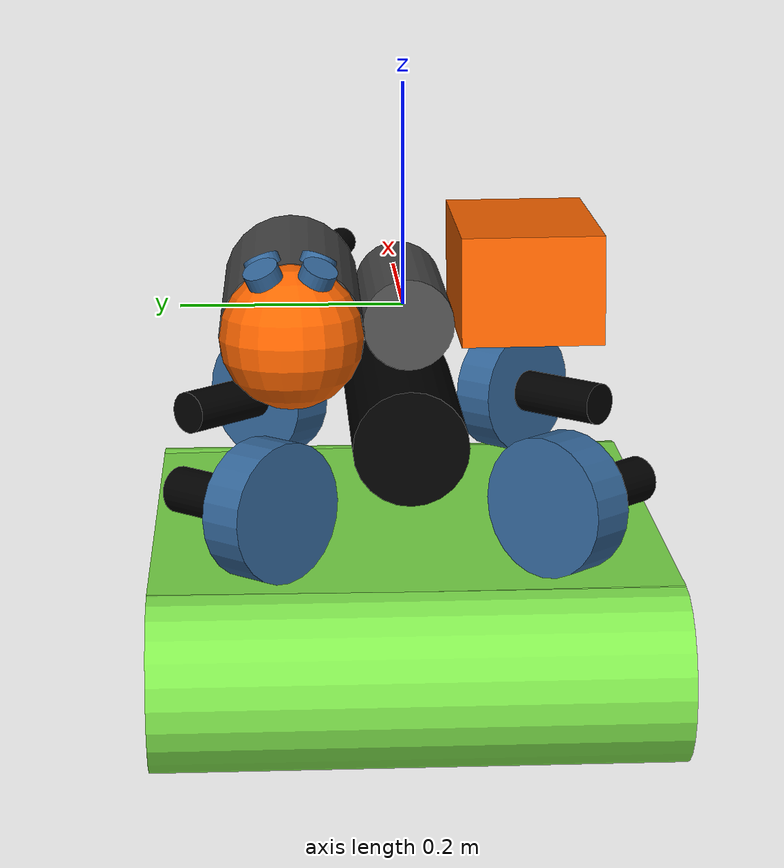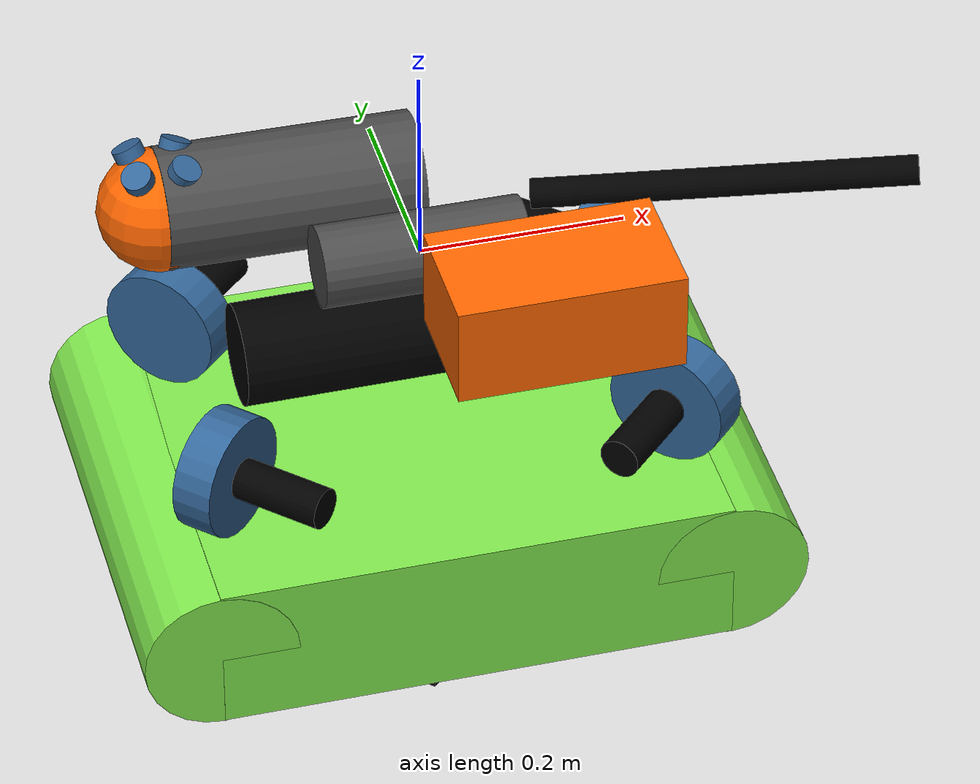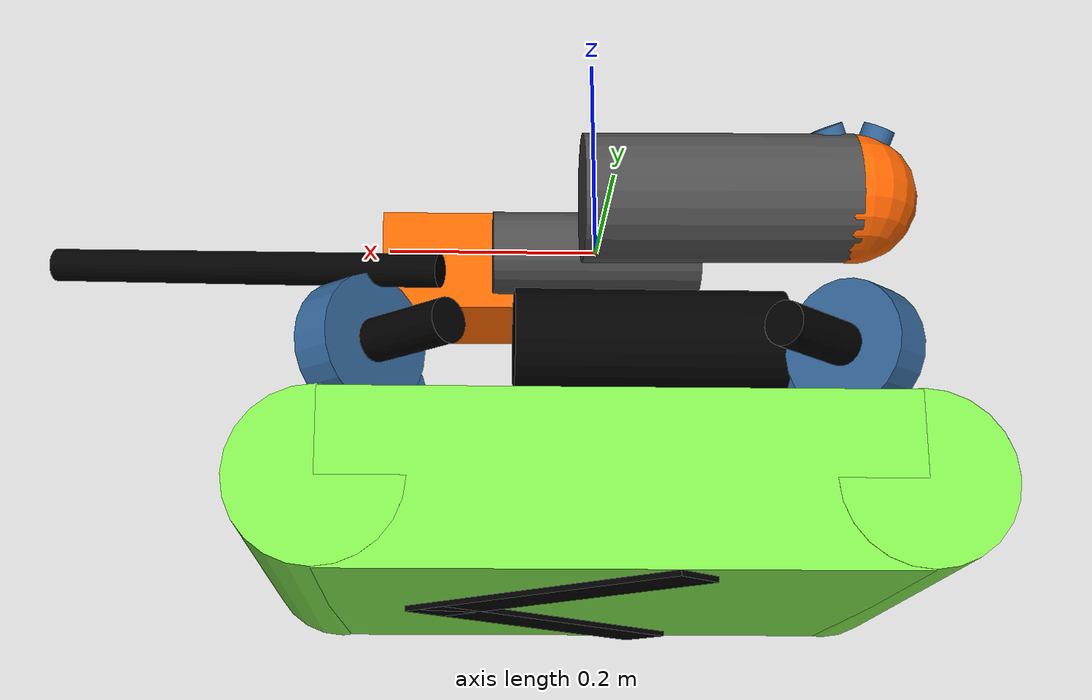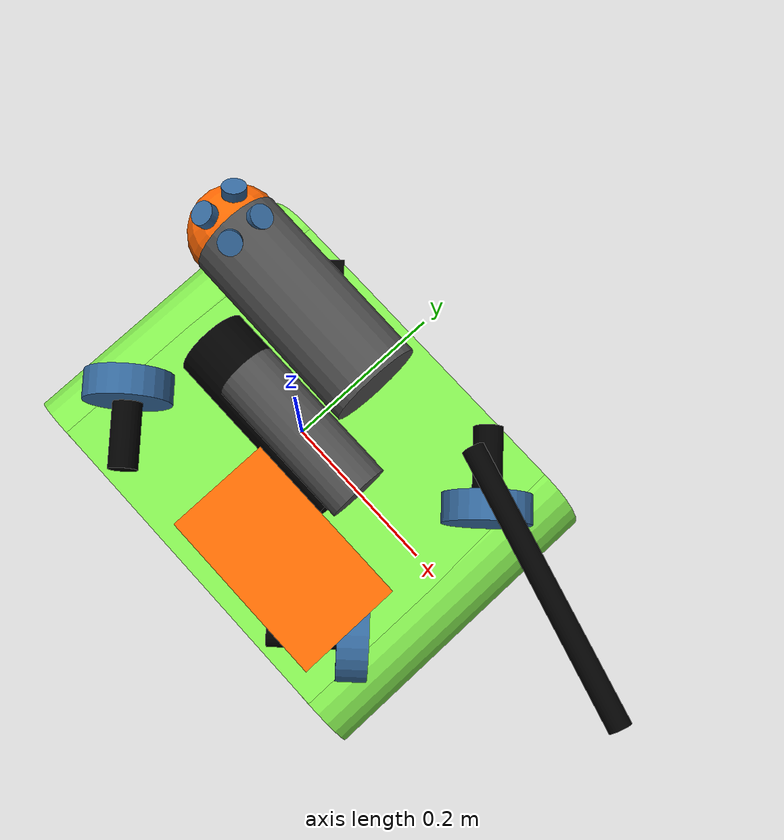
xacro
<?xml version="1.0"?>
<robot xmlns:xacro="http://www.ros.org/wiki/xacro" name="Volturnus">
<!-- robot name="OSU vLBV300 Volturnus" -->
  <xacro:property name="pi" value="3.1515926535897931" />
  <xacro:property name="deg2rad" value="${pi/180}" />

  <!-- Without trig, angles are a pain in the arse. Beam angle 30 -->
  <xacro:property name="dvl_beam_angle" value="${30/180*pi}" />
  <xacro:property name="dvl_pitch" value="0.361367" />
  <xacro:property name="dvl_yaw" value="0.387597" />

  <material name="green">
    <color rgba="0.5 0.9 0.3 1"/>
  </material>
  <material name="black">
    <color rgba="0 0 0 1"/>
  </material>
  <material name="red">
    <color rgba="1 0 0 1"/>
  </material>
  <material name="blue">
    <color rgba="0.2 0.4 0.6 1" />
  </material>
  <material name="grey">
    <color rgba=".3 .3 .3 1"/>
  </material>
  <material name="orange">
    <color rgba="1 .4 0 1" />
  </material>

  <link name="base_link">
    <visual>
      <geometry>
        <box size="0.5 0.45 0.15"/>
      </geometry>
      <material name="green"/>
    </visual>
  </link>

  <link name="front_bumper">
    <visual>
      <geometry>
        <cylinder length="0.45" radius="0.075"/>
      </geometry>
      <material name="green"/>
    </visual>
  </link>
  <joint name="fbump_link" type="fixed">
    <parent link="base_link"/>
    <child link="front_bumper"/>
    <origin rpy="${pi/2} 0 0" xyz="0.25 0 0"/>
  </joint>

  <link name="rear_bumper">
    <visual>
      <geometry>
        <cylinder length="0.45" radius="0.075"/>
      </geometry>
      <material name="green"/>
    </visual>
  </link>
  <joint name="rbump_link" type="fixed">
    <parent link="base_link"/>
    <child link="rear_bumper"/>
    <origin rpy="${pi/2} 0 0" xyz="-0.25 0 0"/>
  </joint>

  <link name="l_arrow">
    <visual>
      <geometry>
        <box size="0.05 0.318 0.01"/>
      </geometry>
      <material name="black"/>
    </visual>
  </link>
  <joint name="l_arrow_link" type="fixed">
    <parent link="base_link"/>
    <child link="l_arrow"/>
    <origin rpy="0 0 ${pi/4}" xyz="0.05 0.095 0.075"/>
  </joint>

  <link name="r_arrow">
    <visual>
      <geometry>
        <box size="0.05 0.318 0.01"/>
      </geometry>
      <material name="black"/>
    </visual>
  </link>
  <joint name="r_arrow_link" type="fixed">
    <parent link="base_link"/>
    <child link="r_arrow"/>
    <origin rpy="0 0 ${-pi/4}" xyz="0.05 -0.095 0.075"/>
  </joint>

  <link name="sf_fan">
    <visual>
      <geometry>
        <cylinder length="0.04" radius="0.06"/>
      </geometry>
      <material name="blue"/>
    </visual>
  </link>
  <joint name="base_to_sf_fan" type="fixed">
    <parent link="base_link"/>
    <child link="sf_fan"/>
    <origin rpy="0 ${pi/2} 0.785" xyz="0.22 -0.12 -0.14"/>
  </joint>
  <link name="sf_thruster">
    <visual>
      <geometry>
        <cylinder length="0.1" radius="0.02"/>
      </geometry>
      <material name="black"/>
    </visual>
  </link>
  <joint name="sf_fan_thruster_joint" type="fixed">
    <parent link="sf_fan"/>
    <child link="sf_thruster"/>
    <origin xyz="0 0 -0.06"/>
  </joint>

  <link name="pf_fan">
    <visual>
      <geometry>
        <cylinder length="0.04" radius="0.06"/>
      </geometry>
      <material name="blue"/>
    </visual>
  </link>
  <joint name="base_to_pf_fan" type="fixed">
    <parent link="base_link"/>
    <child link="pf_fan"/>
    <origin rpy="0 ${pi/2} -0.785" xyz="0.22 0.12 -0.14"/>
  </joint>
  <link name="pf_thruster">
    <visual>
      <geometry>
        <cylinder length="0.1" radius="0.02"/>
      </geometry>
      <material name="black"/>
    </visual>
  </link>
  <joint name="pf_fan_thruster_joint" type="fixed">
    <parent link="pf_fan"/>
    <child link="pf_thruster"/>
    <origin xyz="0 0 -0.06"/>
  </joint>

  <link name="sa_fan">
    <visual>
      <geometry>
        <cylinder length="0.04" radius="0.06"/>
      </geometry>
      <material name="blue"/>
    </visual>
  </link>
  <joint name="base_to_sa_fan" type="fixed">
    <parent link="base_link"/>
    <child link="sa_fan"/>
    <origin rpy="0 ${-pi/2} -0.785" xyz="-0.22 -0.12 -0.14"/>
  </joint>
  <link name="sa_thruster">
    <visual>
      <geometry>
        <cylinder length="0.1" radius="0.02"/>
      </geometry>
      <material name="black"/>
    </visual>
  </link>
  <joint name="sa_fan_thruster_joint" type="fixed">
    <parent link="sa_fan"/>
    <child link="sa_thruster"/>
    <origin xyz="0 0 -0.06"/>
  </joint>

  <link name="pa_fan">
    <visual>
      <geometry>
        <cylinder length="0.04" radius="0.06"/>
      </geometry>
      <material name="blue"/>
    </visual>
  </link>
  <joint name="base_to_pa_fan" type="fixed">
    <parent link="base_link"/>
    <child link="pa_fan"/>
    <origin rpy="0 -${pi/2} 0.785" xyz="-0.22 0.12 -0.14"/>
  </joint>
  <link name="pa_thruster">
    <visual>
      <geometry>
        <cylinder length="0.1" radius="0.02"/>
      </geometry>
      <material name="black"/>
    </visual>
  </link>
  <joint name="pa_fan_thruster_joint" type="fixed">
    <parent link="pa_fan"/>
    <child link="pa_thruster"/>
    <origin xyz="0 0 -0.06"/>
  </joint>

  <link name="seabotix_bottle">
    <visual>
      <geometry>
        <cylinder length="0.26" radius="0.05"/>
      </geometry>
      <material name="black"/>
    </visual>
  </link>
  <joint name="sbottle_link" type="fixed">
    <parent link="base_link"/>
    <child link="seabotix_bottle"/>
    <origin rpy="0 ${pi/2} 0" xyz="-0.05 0 -0.18"/>
  </joint>

  <link name="greensea">
    <visual>
      <geometry>
        <cylinder length="0.2" radius="0.04"/>
      </geometry>
      <origin rpy="0 ${pi/2} 0"/>
      <material name="grey"/>
    </visual>
  </link>
  <joint name="gbottle_link" type="fixed">
    <parent link="greensea"/>
    <child link="base_link"/>
    <origin rpy="-${pi} 0 0" xyz="0 0 -0.27"/>
  </joint>

  <link name="dvl">
    <visual>
      <geometry>
        <cylinder length="0.25" radius="0.06"/>
      </geometry>
      <material name="grey"/>
      <origin rpy="0 ${pi/2} 0" xyz="-0.125 0 0"/>
    </visual>
  </link>
  <joint name="dvl_link" type="fixed">
    <parent link="base_link"/>
    <child link="dvl"/>
    <origin rpy="0 0 ${pi}" xyz="-0.23 -0.1 -0.29"/>
  </joint>

  <link name="dvl_head">
    <visual>
      <geometry>
        <sphere radius="0.06"/>
      </geometry>
      <material name="orange"/>
    </visual>
  </link>
  <joint name="dvl_head_link" type="fixed">
    <parent link="dvl"/>
    <child link="dvl_head"/>
    <origin rpy="0 0 ${-45*deg2rad}" xyz="0 0 0"/>
  </joint>

  <link name="dvl_altitude"/>
  <joint name="dvl_altitude_link" type="fixed">
    <parent link="dvl_head"/>
    <child link="dvl_altitude"/>
    <origin rpy="0 ${pi/2} 0" xyz="0 0 0"/>
  </joint>

  <link name="dvl_beam1">
    <visual>
      <geometry>
        <cylinder length="0.07" radius="0.015"/>
      </geometry>
      <origin rpy="0 ${pi/2} 0" xyz="0.035 0 0"/>
      <material name="blue"/>
    </visual>
  </link>
  <joint name="dvl_beam1_link" type="fixed">
    <parent link="dvl_head"/>
    <child link="dvl_beam1"/>
    <origin rpy="0 ${pi/2-dvl_beam_angle} ${pi/2}" xyz="0 0 0"/>
  </joint>

  <link name="dvl_beam2">
    <visual>
      <geometry>
        <cylinder length="0.07" radius="0.015"/>
      </geometry>
      <origin rpy="0 ${pi/2} 0" xyz="0.035 0 0"/>
      <material name="blue"/>
    </visual>
  </link>
  <joint name="dvl_beam2_link" type="fixed">
    <parent link="dvl_head"/>
    <child link="dvl_beam2"/>
    <origin rpy="0 ${pi/2-dvl_beam_angle} -${pi/2}" xyz="0 0 0"/>
  </joint>

  <link name="dvl_beam3">
    <visual>
      <geometry>
        <cylinder length="0.07" radius="0.015"/>
      </geometry>
      <origin rpy="0 ${pi/2} 0" xyz="0.035 0 0"/>
      <material name="blue"/>
    </visual>
  </link>
  <joint name="dvl_beam3_link" type="fixed">
    <parent link="dvl_head"/>
    <child link="dvl_beam3"/>
    <origin rpy="0 ${pi/2-dvl_beam_angle} 0" xyz="0 0 0"/>
  </joint>

  <link name="dvl_beam4">
    <visual>
      <geometry>
        <cylinder length="0.07" radius="0.015"/>
      </geometry>
      <origin rpy="0 ${pi/2} 0" xyz="0.035 0 0"/>
      <material name="blue"/>
    </visual>
  </link>
  <joint name="dvl_beam4_link" type="fixed">
    <parent link="dvl_head"/>
    <child link="dvl_beam4"/>
    <origin rpy="0 ${pi/2-dvl_beam_angle} ${pi}" xyz="0 0 0"/>
  </joint>

  <link name="sonar">
    <visual>
      <geometry>
        <box size="0.22 0.13 0.1"/>
      </geometry>
      <material name="orange"/>
    </visual>
  </link>
  <joint name="sonar_link" type="fixed">
    <parent link="base_link"/>
    <child link="sonar"/>
    <origin xyz="0.1 0.12 -0.28"/>
  </joint>

  <link name="gripper_pole">
    <visual>
      <geometry>
        <cylinder length="0.38" radius="0.015"/>
      </geometry>
      <origin rpy="0 ${pi/2} 0" xyz="0.19 0 0"/>
      <material name="black"/>
    </visual>
  </link>
  <joint name="gripper_pole_link" type="fixed">
    <parent link="base_link"/>
    <child link="gripper_pole"/>
    <origin rpy="0 0.1 0.3" xyz="0.15 -0.15 -0.2"/>
  </joint>

</robot>
